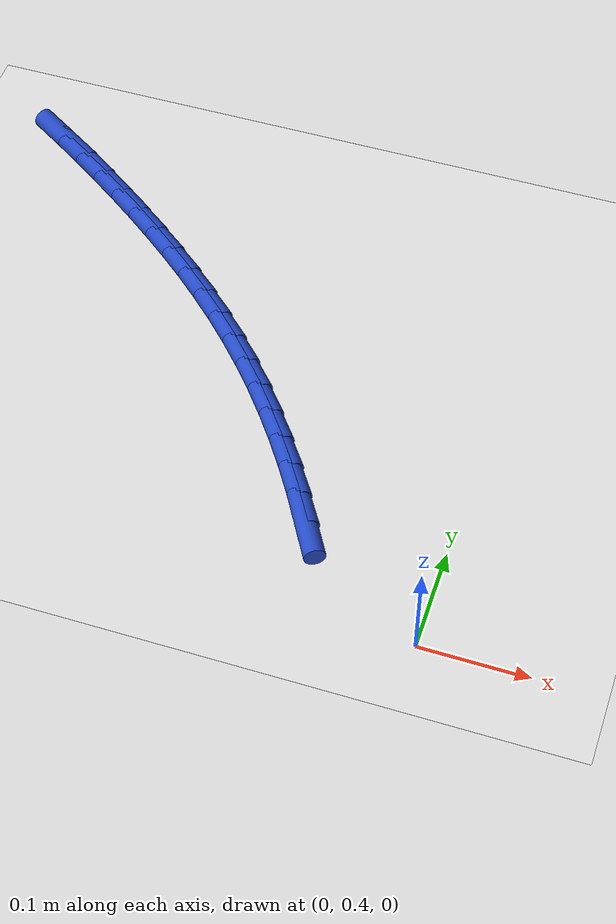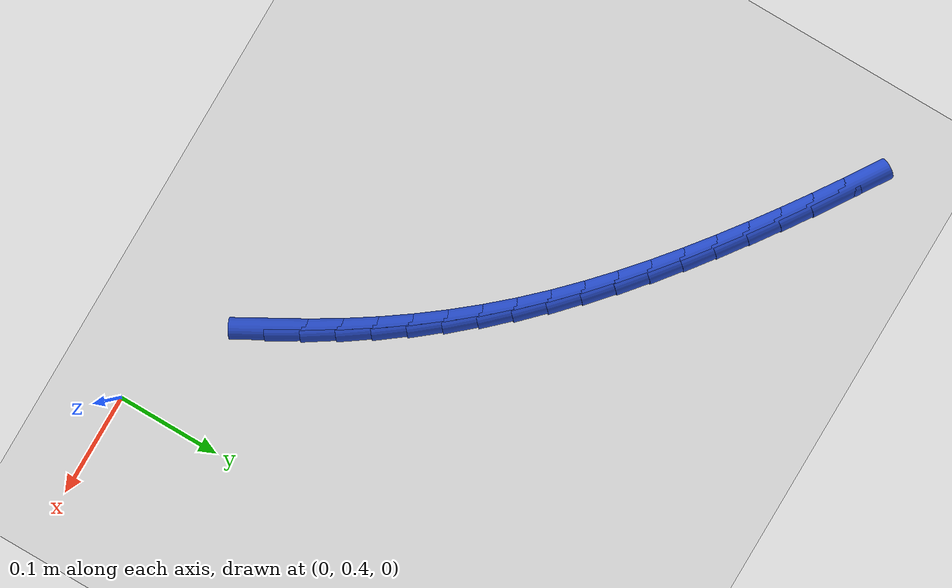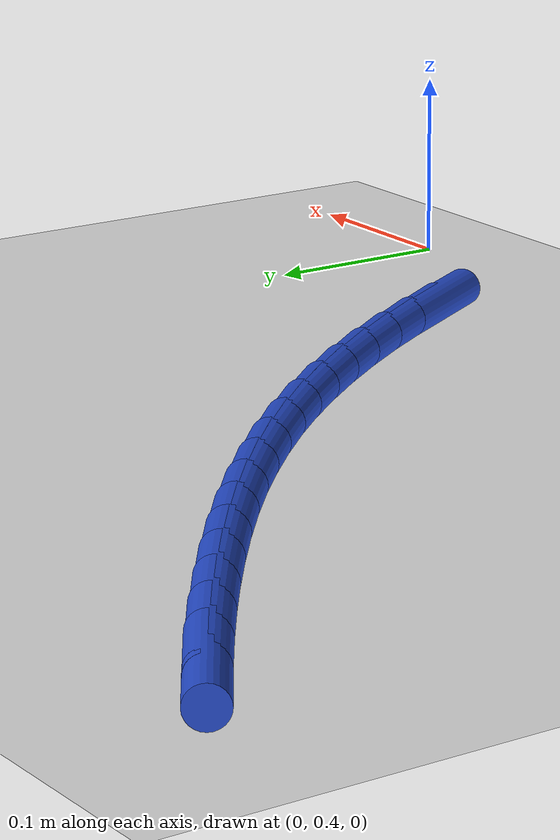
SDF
<sdf version="1.6">
 <world name="default">
  <model name="ground_plane">
   <static>1</static>
   <link name="link">
    <collision name="collision">
     <geometry><plane><normal>0 0 1</normal><size>100 100</size></plane></geometry>
     <surface><friction><ode><mu>100</mu><mu2>50</mu2></ode></friction></surface>
    </collision>
    <visual name="visual">
     <cast_shadows>0</cast_shadows>
     <geometry><plane><normal>0 0 1</normal><size>100 100</size></plane></geometry>
     <material>
      <script><uri>file://media/materials/scripts/gazebo.material</uri><name>Gazebo/WhiteGlow</name></script>
     </material>
    </visual>
   </link>
  </model>
  <model name="line">
   <link name="link_16">
    <pose>-0.1251578563513557 0.48891639830884326 0.01 0 1.57 -1.0567759505171306</pose>
    <collision name="collision">
     <geometry><cylinder><radius>0.01</radius><length>0.08</length></cylinder></geometry>
    </collision>
    <visual name="visual">
     <material>
      <script><name>Gazebo/Blue</name><uri>file://media/materials/scripts/gazebo.material</uri></script>
     </material>
     <geometry><cylinder><radius>0.01</radius><length>0.08</length></cylinder></geometry>
    </visual>
   </link>
   <link name="link_17">
    <pose>-0.14088090882654172 0.5167621124910818 0.01 0 1.57 -1.0236626960776993</pose>
    <collision name="collision">
     <geometry><cylinder><radius>0.01</radius><length>0.08</length></cylinder></geometry>
    </collision>
    <visual name="visual">
     <material>
      <script><name>Gazebo/Blue</name><uri>file://media/materials/scripts/gazebo.material</uri></script>
     </material>
     <geometry><cylinder><radius>0.01</radius><length>0.08</length></cylinder></geometry>
    </visual>
   </link>
   <link name="link_18">
    <pose>-0.1575010007696251 0.5440453644782058 0.01 0 1.57 -0.9898887694961618</pose>
    <collision name="collision">
     <geometry><cylinder><radius>0.01</radius><length>0.08</length></cylinder></geometry>
    </collision>
    <visual name="visual">
     <material>
      <script><name>Gazebo/Blue</name><uri>file://media/materials/scripts/gazebo.material</uri></script>
     </material>
     <geometry><cylinder><radius>0.01</radius><length>0.08</length></cylinder></geometry>
    </visual>
   </link>
   <link name="link_19">
    <pose>-0.17501252073388165 0.5707207913988745 0.01 0 1.57 -0.9553977100250496</pose>
    <collision name="collision">
     <geometry><cylinder><radius>0.01</radius><length>0.08</length></cylinder></geometry>
    </collision>
    <visual name="visual">
     <material>
      <script><name>Gazebo/Blue</name><uri>file://media/materials/scripts/gazebo.material</uri></script>
     </material>
     <geometry><cylinder><radius>0.01</radius><length>0.08</length></cylinder></geometry>
    </visual>
   </link>
   <link name="link_20">
    <pose>-0.19340985727258714 0.5967430303817474 0.01 0 1.57 -0.920136910584191</pose>
    <collision name="collision">
     <geometry><cylinder><radius>0.01</radius><length>0.08</length></cylinder></geometry>
    </collision>
    <visual name="visual">
     <material>
      <script><name>Gazebo/Blue</name><uri>file://media/materials/scripts/gazebo.material</uri></script>
     </material>
     <geometry><cylinder><radius>0.01</radius><length>0.08</length></cylinder></geometry>
    </visual>
   </link>
   <link name="link_21">
    <pose>-0.21268739893901734 0.6220667185554833 0.01 0 1.57 -0.8840584672052518</pose>
    <collision name="collision">
     <geometry><cylinder><radius>0.01</radius><length>0.08</length></cylinder></geometry>
    </collision>
    <visual name="visual">
     <material>
      <script><name>Gazebo/Blue</name><uri>file://media/materials/scripts/gazebo.material</uri></script>
     </material>
     <geometry><cylinder><radius>0.01</radius><length>0.08</length></cylinder></geometry>
    </visual>
   </link>
   <link name="link_22">
    <pose>-0.23283953428644816 0.6466464930487423 0.01 0 1.57 -0.8471201674985427</pose>
    <collision name="collision">
     <geometry><cylinder><radius>0.01</radius><length>0.08</length></cylinder></geometry>
    </collision>
    <visual name="visual">
     <material>
      <script><name>Gazebo/Blue</name><uri>file://media/materials/scripts/gazebo.material</uri></script>
     </material>
     <geometry><cylinder><radius>0.01</radius><length>0.08</length></cylinder></geometry>
    </visual>
   </link>
   <link name="link_23">
    <pose>-0.25386065186815526 0.6704369909901832 0.01 0 1.57 -0.8098700248881961</pose>
    <collision name="collision">
     <geometry><cylinder><radius>0.01</radius><length>0.08</length></cylinder></geometry>
    </collision>
    <visual name="visual">
     <material>
      <script><name>Gazebo/Blue</name><uri>file://media/materials/scripts/gazebo.material</uri></script>
     </material>
     <geometry><cylinder><radius>0.01</radius><length>0.08</length></cylinder></geometry>
    </visual>
   </link>
   <link name="link_24">
    <pose>-0.27573358890977906 0.6934075510010748 0.01 0 1.57 -0.7748713112820093</pose>
    <collision name="collision">
     <geometry><cylinder><radius>0.01</radius><length>0.08</length></cylinder></geometry>
    </collision>
    <visual name="visual">
     <material>
      <script><name>Gazebo/Blue</name><uri>file://media/materials/scripts/gazebo.material</uri></script>
     </material>
     <geometry><cylinder><radius>0.01</radius><length>0.08</length></cylinder></geometry>
    </visual>
   </link>
   <link name="link_25">
    <pose>-0.2983903285680832 0.7155922341953169 0.01 0 1.57 -0.7428464093929975</pose>
    <collision name="collision">
     <geometry><cylinder><radius>0.01</radius><length>0.08</length></cylinder></geometry>
    </collision>
    <visual name="visual">
     <material>
      <script><name>Gazebo/Blue</name><uri>file://media/materials/scripts/gazebo.material</uri></script>
     </material>
     <geometry><cylinder><radius>0.01</radius><length>0.08</length></cylinder></geometry>
    </visual>
   </link>
   <link name="link_26">
    <pose>-0.32174886369677025 0.7370429072883423 0.01 0 1.57 -0.7137885605874472</pose>
    <collision name="collision">
     <geometry><cylinder><radius>0.01</radius><length>0.08</length></cylinder></geometry>
    </collision>
    <visual name="visual">
     <material>
      <script><name>Gazebo/Blue</name><uri>file://media/materials/scripts/gazebo.material</uri></script>
     </material>
     <geometry><cylinder><radius>0.01</radius><length>0.08</length></cylinder></geometry>
    </visual>
   </link>
   <link name="link_27">
    <pose>-0.34572718673480757 0.7578114375234223 0.01 0 1.57 -0.6876719097140062</pose>
    <collision name="collision">
     <geometry><cylinder><radius>0.01</radius><length>0.08</length></cylinder></geometry>
    </collision>
    <visual name="visual">
     <material>
      <script><name>Gazebo/Blue</name><uri>file://media/materials/scripts/gazebo.material</uri></script>
     </material>
     <geometry><cylinder><radius>0.01</radius><length>0.08</length></cylinder></geometry>
    </visual>
   </link>
   <link name="link_28">
    <pose>-0.37024329012116175 0.7779496921438275 0.01 0 1.57 -0.6644592457589734</pose>
    <collision name="collision">
     <geometry><cylinder><radius>0.01</radius><length>0.08</length></cylinder></geometry>
    </collision>
    <visual name="visual">
     <material>
      <script><name>Gazebo/Blue</name><uri>file://media/materials/scripts/gazebo.material</uri></script>
     </material>
     <geometry><cylinder><radius>0.01</radius><length>0.08</length></cylinder></geometry>
    </visual>
   </link>
   <link name="link_29">
    <pose>-0.3952151662948001 0.7975095383928291 0.01 0 1.57 -0.6441087234102072</pose>
    <collision name="collision">
     <geometry><cylinder><radius>0.01</radius><length>0.08</length></cylinder></geometry>
    </collision>
    <visual name="visual">
     <material>
      <script><name>Gazebo/Blue</name><uri>file://media/materials/scripts/gazebo.material</uri></script>
     </material>
     <geometry><cylinder><radius>0.01</radius><length>0.08</length></cylinder></geometry>
    </visual>
   </link>
   <link name="link_30">
    <pose>-0.4205608076946896 0.8165428435136987 0.01 0 1.57 -0.6265040001483397</pose>
    <collision name="collision">
     <geometry><cylinder><radius>0.01</radius><length>0.08</length></cylinder></geometry>
    </collision>
    <visual name="visual">
     <material>
      <script><name>Gazebo/Blue</name><uri>file://media/materials/scripts/gazebo.material</uri></script>
     </material>
     <geometry><cylinder><radius>0.01</radius><length>0.08</length></cylinder></geometry>
    </visual>
   </link>
   <link name="link_31">
    <pose>-0.4462006465220543 0.8351002875811697 0.01 0 1.57 -0.6101104772405974</pose>
    <collision name="collision">
     <geometry><cylinder><radius>0.01</radius><length>0.08</length></cylinder></geometry>
    </collision>
    <visual name="visual">
     <material>
      <script><name>Gazebo/Blue</name><uri>file://media/materials/scripts/gazebo.material</uri></script>
     </material>
     <geometry><cylinder><radius>0.01</radius><length>0.08</length></cylinder></geometry>
    </visual>
   </link>
   <link name="link_32">
    <pose>-0.47210389348806636 0.8532088154424396 0.01 0 1.57 -0.5935541881242229</pose>
    <collision name="collision">
     <geometry><cylinder><radius>0.01</radius><length>0.08</length></cylinder></geometry>
    </collision>
    <visual name="visual">
     <material>
      <script><name>Gazebo/Blue</name><uri>file://media/materials/scripts/gazebo.material</uri></script>
     </material>
     <geometry><cylinder><radius>0.01</radius><length>0.08</length></cylinder></geometry>
    </visual>
   </link>
   <link name="link_33">
    <pose>-0.49828478001699494 0.8708734652306569 0.01 0 1.57 -0.5768158917506926</pose>
    <collision name="collision">
     <geometry><cylinder><radius>0.01</radius><length>0.08</length></cylinder></geometry>
    </collision>
    <visual name="visual">
     <material>
      <script><name>Gazebo/Blue</name><uri>file://media/materials/scripts/gazebo.material</uri></script>
     </material>
     <geometry><cylinder><radius>0.01</radius><length>0.08</length></cylinder></geometry>
    </visual>
   </link>
  </model>
 </world>
</sdf>
